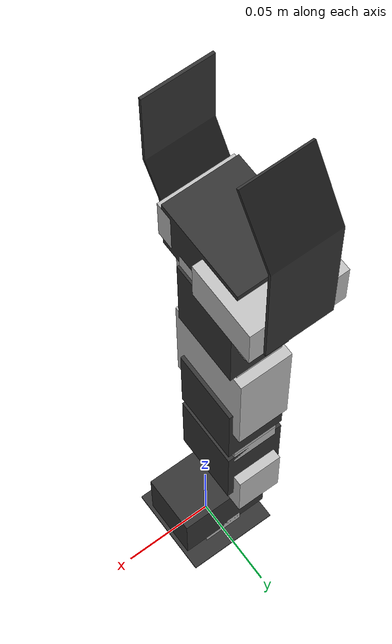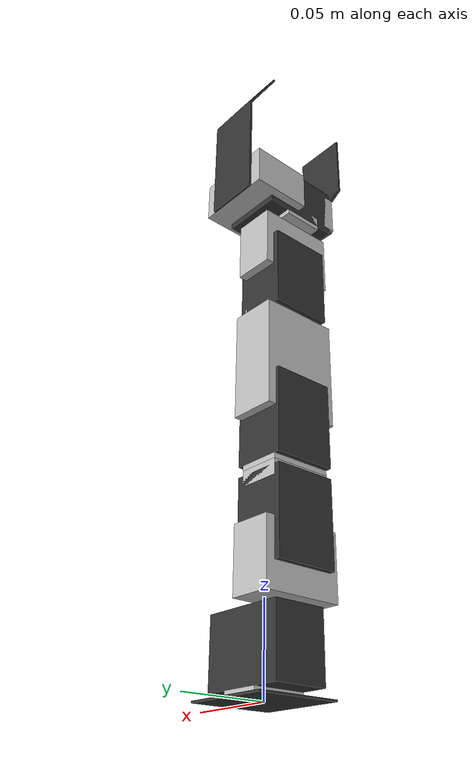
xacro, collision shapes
<?xml version="1.0"?>

<robot
    name="crane_plus"
    xmlns:xacro="http://ros.org/wiki/xacro"
    xmlns:sensor="http://playerstage.sourceforge.net/gazebo/xmlschema/#sensor"
    xmlns:controller="http://playerstage.sourceforge.net/gazebo/xmlschema/#controller"
    xmlns:interface="http://playerstage.sourceforge.net/gazebo/xmlschema/#interface">

  <!-- Include the Crane+ generator macro -->
  <xacro:include filename="$(find crane_plus_description)/urdf/crane_plus.xacro"/>

  <!-- Link to provide the location reference for the arm -->
  <link name="base_link"/>

  <crane_plus parent="base_link"
              servo_color="black" bracket_color="grey" gripper_color="black"
              joints_vlimit="1.571"
              pan_llimit="-2.617" pan_ulimit="2.617">
    <!-- Place the "floating" arm at the origin of the base_link. -->
    <origin xyz="0 0 0"/>
  </crane_plus>

  <!-- Add the transmissions necessary to move the simulated robot's joints -->
  <!-- Shoulder revolute servo -->
  <transmission name="shoulder_revolute">
    <type>transmission_interface/SimpleTransmission</type>
    <joint name="crane_plus_shoulder_revolute_joint">
      <hardwareInterface>hardware_interface/PositionJointInterface</hardwareInterface>
    </joint>
    <actuator name="shoulder_revolute_servo">
      <hardwareInterface>PositionJointInterface</hardwareInterface>
      <mechanicalReduction>1</mechanicalReduction>
    </actuator>
  </transmission>

  <!-- Shoulder flex servo -->
  <transmission name="shoulder_flex">
    <type>transmission_interface/SimpleTransmission</type>
    <joint name="crane_plus_shoulder_flex_joint">
      <hardwareInterface>hardware_interface/PositionJointInterface</hardwareInterface>
    </joint>
    <actuator name="shoulder_flex_servo">
      <hardwareInterface>PositionJointInterface</hardwareInterface>
      <mechanicalReduction>1</mechanicalReduction>
    </actuator>
  </transmission>

  <!-- Elbow servo -->
  <transmission name="elbow">
    <type>transmission_interface/SimpleTransmission</type>
    <joint name="crane_plus_elbow_joint">
      <hardwareInterface>hardware_interface/PositionJointInterface</hardwareInterface>
    </joint>
    <actuator name="elbow_servo">
      <hardwareInterface>PositionJointInterface</hardwareInterface>
      <mechanicalReduction>1</mechanicalReduction>
    </actuator>
  </transmission>

  <!-- Wrist servo -->
  <transmission name="wrist">
    <type>transmission_interface/SimpleTransmission</type>
    <joint name="crane_plus_wrist_joint">
      <hardwareInterface>hardware_interface/PositionJointInterface</hardwareInterface>
    </joint>
    <actuator name="wrist_servo">
      <hardwareInterface>PositionJointInterface</hardwareInterface>
      <mechanicalReduction>1</mechanicalReduction>
    </actuator>
  </transmission>

  <!-- Finger servo -->
  <transmission name="finger">
    <type>transmission_interface/SimpleTransmission</type>
    <joint name="crane_plus_moving_finger_joint">
      <hardwareInterface>hardware_interface/EffortJointInterface</hardwareInterface>
    </joint>
    <actuator name="finger_servo">
      <hardwareInterface>EffortJointInterface</hardwareInterface>
      <mechanicalReduction>1</mechanicalReduction>
    </actuator>
  </transmission>

  <gazebo>
    <plugin name="control" filename="libgazebo_ros_control.so"/>
    <plugin name="joint_state_publisher" filename="libgazebo_ros_joint_state_publisher.so">
      <jointName>
        crane_plus_shoulder_revolute_joint,
        crane_plus_shoulder_flex_joint,
        crane_plus_elbow_joint,
        crane_plus_wrist_joint,
        crane_plus_moving_finger_joint
      </jointName>
    </plugin>
  </gazebo>
</robot>

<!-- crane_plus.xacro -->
<robot xmlns:xacro="http://ros.org/wiki/xacro">
  <xacro:include filename="$(find crane_plus_description)/urdf/crane_plus_hardware.xacro"/>

  <material name="grey">
    <color rgba="0.75 0.75 0.75 1.0"/>
  </material>
  <material name="black">
    <color rgba="0.2 0.2 0.2 1.0"/>
  </material>

  <xacro:macro name="crane_plus" params="parent servo_color bracket_color
               gripper_color *origin joints_vlimit pan_llimit pan_ulimit">
    <link name="crane_plus_mounting_link"/>
    <joint name="crane_plus_mounting_joint" type="fixed">
      <xacro:insert_block name="origin"/>
      <parent link="${parent}"/>
      <child link="crane_plus_mounting_link"/>
    </joint>

    <!-- TODO: When rviz supports multiple materials per link, combine the
         meshes to simplify the link structure. -->

    <!-- Mounting plate -->
    <xacro:mounting_plate
        parent="crane_plus_mounting_link"
        name="crane_plus_internal_mounting_plate"
        color="black">
      <origin xyz="0 0 0" rpy="0 0 0"/>
    </xacro:mounting_plate>

    <!-- Base bracket -->
    <xacro:bioloid_f53_fixed
        parent="crane_plus_internal_mounting_plate_link"
        name="crane_plus_internal_base_bracket"
        color="grey">
      <origin xyz="0 0 ${MOUNT_HEIGHT}" rpy="0 0 0"/>
    </xacro:bioloid_f53_fixed>

    <!-- Shoulder servo -->
    <xacro:dynamixel_ax12_fixed
        parent="crane_plus_internal_base_bracket_link"
        name="crane_plus_internal_shoulder_servo"
        color="black">
        <origin xyz="-${AX12_SIDE_SCREW_OFFSET} 0 ${AX12_BODY_MAIN_HEIGHT/2 + F53_HEIGHT}" rpy="0 0 0"/>
    </xacro:dynamixel_ax12_fixed>

    <!-- Shoulder bracket -->
    <xacro:bioloid_f2_revolute_base_axis
        parent="crane_plus_internal_shoulder_servo_link"
        name="crane_plus_shoulder_revolute"
        color="grey"
        vlimit="${joints_vlimit}"
        llimit="${pan_llimit}"
        ulimit="${pan_ulimit}">
        <origin xyz="-${AX12_AXLE_OFFSET} 0 ${AX12_HORN_HEIGHT}" rpy="0 0 0"/>
    </xacro:bioloid_f2_revolute_base_axis>

    <!--Upper arm servo -->
    <xacro:dynamixel_ax12_revolute
        parent="crane_plus_shoulder_revolute_link"
        name="crane_plus_shoulder_flex"
        color="black"
        vlimit="${joints_vlimit}"
        llimit="-1.7"
        ulimit="1.7">
        <origin xyz="0 0 ${F2_AXLE_HEIGHT}" rpy="-${M_PI/2} -${M_PI/2} 0"/>
    </xacro:dynamixel_ax12_revolute>

    <!-- Upper arm upper joiner -->
    <xacro:bioloid_f3_fixed
        parent="crane_plus_shoulder_flex_link"
        name="crane_plus_internal_upper_arm_upper_joiner"
        color="grey">
        <origin xyz="${AX12_ORIGIN_TO_AXLE+AX12_ORIGIN_TO_END_SCREW+F3_SCREW_HEIGHT} 0 0" rpy="-${M_PI/2} 0 ${M_PI/2}"/>
    </xacro:bioloid_f3_fixed>

    <!-- Upper arm lower joiner -->
    <xacro:bioloid_f3_fixed
        parent="crane_plus_internal_upper_arm_upper_joiner_link"
        name="crane_plus_internal_upper_arm_lower_joiner"
        color="grey">
        <origin xyz="0 0 0" rpy="${M_PI} 0 0"/>
    </xacro:bioloid_f3_fixed>

    <!-- Lower arm servo -->
    <xacro:dynamixel_ax12_fixed
        parent="crane_plus_internal_upper_arm_lower_joiner_link"
        name="crane_plus_internal_lower_arm_servo"
        color="black">
      <origin xyz="0 0 ${F3_SCREW_HEIGHT+AX12_ORIGIN_TO_END_SCREW}" rpy="0 ${M_PI/2} ${M_PI/2}"/>
    </xacro:dynamixel_ax12_fixed>

    <!-- Lower arm bracket -->
    <xacro:bioloid_f4_revolute
        parent="crane_plus_internal_lower_arm_servo_link"
        name="crane_plus_elbow"
        color="grey"
        vlimit="${joints_vlimit}"
        llimit="-2.3"
        ulimit="2.3">
        <origin xyz="-${AX12_ORIGIN_TO_AXLE} 0 0" rpy="${M_PI/2} 0 ${M_PI/2}"/>
    </xacro:bioloid_f4_revolute>

    <!-- Lower arm joiner -->
    <xacro:bioloid_f3_fixed
        parent="crane_plus_elbow_link"
        name="crane_plus_internal_lower_arm_joiner"
        color="grey">
        <origin xyz="0 0 -${F4_AXLE_HEIGHT}" rpy="0 ${M_PI} 0"/>
    </xacro:bioloid_f3_fixed>

    <!-- Wrist servo -->
    <xacro:dynamixel_ax12_fixed
        parent="crane_plus_internal_lower_arm_joiner_link"
        name="crane_plus_internal_wrist_servo"
        color="black">
      <origin xyz="0 0 ${F3_SCREW_HEIGHT+AX12_ORIGIN_TO_END_SCREW}" rpy="0 ${M_PI/2} ${M_PI/2}"/>
    </xacro:dynamixel_ax12_fixed>

    <!-- Wrist bracket -->
    <xacro:bioloid_f2_revolute
        parent="crane_plus_internal_wrist_servo_link"
        name="crane_plus_wrist"
        color="grey"
        vlimit="${joints_vlimit}"
        llimit="-1.7"
        ulimit="1.7">
        <origin xyz="-${AX12_ORIGIN_TO_AXLE} 0 0" rpy="-${M_PI/2} 0 -${M_PI/2}"/>
    </xacro:bioloid_f2_revolute>

    <!-- Wrist joiner -->
    <xacro:bioloid_f3_fixed
        parent="crane_plus_wrist_link"
        name="crane_plus_internal_wrist_joiner"
        color="grey">
        <origin xyz="0 0 -${F2_AXLE_HEIGHT}" rpy="0 ${M_PI} ${M_PI/2}"/>
    </xacro:bioloid_f3_fixed>

    <!-- Gripper servo -->
    <xacro:dynamixel_ax12_fixed
        parent="crane_plus_internal_wrist_joiner_link"
        name="crane_plus_internal_gripper_servo"
        color="black">
        <origin xyz="${AX12_SIDE_SCREW_OFFSET} 0 ${F3_SCREW_HEIGHT+AX12_ORIGIN_TO_SIDE_SCREW}" rpy="${M_PI/2} ${M_PI} 0"/>
    </xacro:dynamixel_ax12_fixed>

    <!-- Fixed finger joiner -->
    <xacro:bioloid_f3_fixed
        parent="crane_plus_internal_gripper_servo_link"
        name="crane_plus_internal_fixed_finger_joiner"
        color="grey">
        <origin xyz="${AX12_ORIGIN_TO_END_SCREW+F3_SCREW_HEIGHT} 0 0" rpy="-${M_PI/2} 0 ${M_PI/2}"/>
    </xacro:bioloid_f3_fixed>

    <!-- Fixed finger -->
    <xacro:fixed_finger
        parent="crane_plus_internal_fixed_finger_joiner_link"
        name="crane_plus_internal_fixed_finger"
        color="black">
      <origin xyz="0 0 0" rpy="0 0 ${M_PI}"/>
    </xacro:fixed_finger>

    <!-- Tip of the fixed finger (useful in all sorts of ways) -->
    <joint name="crane_plus_fixed_finger_tip" type="fixed">
      <origin xyz="0.0745 0 -0.0106" rpy="${M_PI/2} 0 ${M_PI/2}"/>
      <parent link="crane_plus_internal_fixed_finger_link"/>
      <child link="crane_plus_fixed_finger_tip_link"/>
    </joint>
    <link name="crane_plus_fixed_finger_tip_link"/>

    <!-- Moving finger bracket (actual gripper joint) -->
    <xacro:bioloid_f2_revolute
        parent="crane_plus_internal_gripper_servo_link"
        name="crane_plus_moving_finger"
        color="grey"
        vlimit="${joints_vlimit}"
        llimit="-0.6"
        ulimit="0.65">
        <origin xyz="-${AX12_ORIGIN_TO_AXLE} 0 0" rpy="-${M_PI/2} 0 -${M_PI/2}"/>
    </xacro:bioloid_f2_revolute>

    <!-- Moving finger -->
    <xacro:moving_finger
        parent="crane_plus_moving_finger_link"
        name="crane_plus_internal_moving_finger_plate"
        color="black">
      <origin xyz="0 0 -${F2_AXLE_HEIGHT}" rpy="${M_PI} 0 0"/>
    </xacro:moving_finger>

    <!-- Tip of the moving finger (useful in all sorts of ways) -->
    <joint name="crane_plus_moving_finger_tip" type="fixed">
      <origin xyz="0.0923 0 -0.0194" rpy="${M_PI/2} 0 ${M_PI/2}"/>
      <parent link="crane_plus_internal_moving_finger_plate_link"/>
      <child link="crane_plus_moving_finger_tip_link"/>
    </joint>
    <link name="crane_plus_moving_finger_tip_link"/>

    <!-- A virtual link for the gripper to hang off, increasing the degrees of
         freedom by one and making it easier for MoveIt! to plan. -->
    <link name="crane_plus_gripper_link"/>
    <joint name="crane_plus_gripper_joint" type="revolute">
      <origin xyz="0 0 0.07" rpy="0 0 -${M_PI/2}"/>
      <axis xyz="1 0 0"/>
      <parent link="crane_plus_internal_wrist_joiner_link"/>
      <child link="crane_plus_gripper_link" />
      <limit effort="30" velocity="1" lower="-${M_PI}" upper="${M_PI}"/>
    </joint>

  </xacro:macro>
</robot>

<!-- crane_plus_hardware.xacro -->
<robot xmlns:xacro="http://ros.org/wiki/xacro">
  <xacro:property name="M_PI" value="3.14159"/>
  <xacro:property name="SCALE_MM" value="0.001"/>
  <xacro:property name="SCALE_CM" value="0.01"/>

  <xacro:property name="AX12_WIDTH" value="0.032"/>
  <xacro:property name="AX12_ORIGIN_TO_SIDE_SCREW" value="0.0135"/>
  <!-- The AX12 mesh is offset 1.5mm on the X axis away from the direction of
       the axle (i.e. the portion on negative X axis, with the axle, is shorter
       than the portion on the positive X axis).-->
  <xacro:property name="AX12_ORIGIN_OFFSET_X" value="-0.0015"/>
  <!-- The screws along the X axis of the servo are 2.8mm offset from being
       aligned on the origin of the mesh.-->
  <xacro:property name="AX12_SIDE_SCREW_OFFSET" value="0.0028"/>
  <xacro:property name="AX12_LENGTH" value="0.050"/>
  <!-- This is the distance from the origin to the centreline of the screws at
       the opposite end.-->
  <xacro:property name="AX12_ORIGIN_TO_END_SCREW" value="0.024"/>
  <!-- The distance from the centreline of the servo to the centre of the
       axle.-->
  <xacro:property name="AX12_AXLE_OFFSET" value="0.0135"/>
  <!-- The distance from the origin of the servo mesh to the centre of the
       axle.-->
  <xacro:property name="AX12_ORIGIN_TO_AXLE" value="0.012"/>
  <!-- This height is measured from the bottom axle mount to the top of the
       servo horn (the round bit on the axle).-->
  <xacro:property name="AX12_HEIGHT" value="0.040"/>
  <!-- This height is measured from the bottom of the servo body to the top of
       the servo body.-->
  <xacro:property name="AX12_BODY_MAIN_HEIGHT" value="0.032"/>
  <!-- This height is measured from the bottom axle mount to the top of the
       servo, excluding the horn.-->
  <xacro:property name="AX12_BODY_FULL_HEIGHT" value="0.038"/>
  <!-- This is the height of the top of the servo horn above the servo's
       origin.-->
  <xacro:property name="AX12_HORN_HEIGHT" value="0.021"/>

  <xacro:property name="F2_HEIGHT" value="0.0375"/>
  <!-- This height goes from the bottom attachment point to the centreline of
       the axle attach point.-->
  <xacro:property name="F2_AXLE_HEIGHT" value="0.0265"/>
  <xacro:property name="F3_SCREW_HEIGHT" value="0.0055"/>
  <xacro:property name="F4_HEIGHT" value="0.065"/>
  <!-- This height goes from the bottom attachment point (excluding the
       parallel nubs) to the centreline of the axel attach point.-->
  <xacro:property name="F4_AXLE_HEIGHT" value="0.0525"/>
  <!-- This height goes to where the servo contacts the screw points. It does
       not include the nubs on top that fit between the servo screw attachment
       points.-->
  <xacro:property name="F53_HEIGHT" value="0.007"/>

  <xacro:property name="MOUNT_HEIGHT" value="0.001"/>

  <xacro:macro name="mounting_plate" params="parent name color *origin">
    <joint name="${name}_joint" type="fixed">
      <xacro:insert_block name="origin"/>
      <parent link="${parent}"/>
      <child link="${name}_link"/>
    </joint>

    <link name="${name}_link">
          <!--iyy="8.33e-6" iyz="0.0"-->
      <inertial>
        <mass value="0.001"/>
        <origin xyz="0 0 0.0005" rpy="0 0 0"/>
        <inertia ixx="1" ixy="0.0" ixz="0.0"
          iyy="1" iyz="0.0"
          izz="1"/>
      </inertial>

      <visual>
        <origin xyz="-0.025 -0.025 0" rpy="0 0 0"/>
        <geometry>
          <mesh filename="package://crane_plus_description/meshes/mount.stl" scale="1 1 1"/>
        </geometry>
        <material name="${color}"/>
      </visual>

      <collision>
        <origin xyz="0 0 0.0005" rpy="0 0 0"/>
        <geometry>
          <box size="0.05 0.05 0.001"/>
        </geometry>
      </collision>
    </link>
  </xacro:macro>

  <xacro:macro name="bioloid_f53_fixed" params="parent name color *origin">
    <joint name="${name}_joint" type="fixed">
      <xacro:insert_block name="origin"/>
      <parent link="${parent}"/>
      <child link="${name}_link"/>
    </joint>

    <link name="${name}_link">
      <inertial>
        <mass value="0.001"/>
        <origin xyz="0 0 0.0005" rpy="0 0 0"/>
        <inertia ixx="1" ixy="0.0" ixz="0.0"
          iyy="1" iyz="0.0"
          izz="1"/>
      </inertial>
          <!--iyy="6.283e-7" iyz="0.0"-->

      <visual>
        <origin xyz="0 0 0" rpy="-${M_PI/2} 0 0"/>
        <geometry>
          <mesh filename="package://crane_plus_description/meshes/f53.stl" scale="${SCALE_CM} ${SCALE_CM} ${SCALE_CM}"/>
        </geometry>
        <material name="${color}"/>
      </visual>

      <collision>
        <origin xyz="0.0 0.0 0.004" rpy="0 0 0"/>
        <geometry>
          <box size="0.022 0.032 0.008"/>
        </geometry>
      </collision>
    </link>
  </xacro:macro>

  <xacro:macro name="dynamixel_ax12_fixed" params="parent name color *origin">
    <joint name="${name}_joint" type="fixed">
      <xacro:insert_block name="origin"/>
      <parent link="${parent}"/>
      <child link="${name}_link"/>
    </joint>

    <link name="${name}_link">
      <inertial>
        <mass value="0.001"/>
        <origin xyz="0 0 0.0005" rpy="0 0 0"/>
        <inertia ixx="1" ixy="0.0" ixz="0.0"
          iyy="1" iyz="0.0"
          izz="1"/>
      </inertial>
          <!--iyy="1.656e-50" iyz="0.0"-->

      <visual>
        <origin xyz="0 0 0" rpy="-${M_PI/2} 0 0"/>
        <geometry>
          <mesh filename="package://crane_plus_description/meshes/ax12_box.stl" scale="${SCALE_MM} ${SCALE_MM} ${SCALE_MM}"/>
        </geometry>
        <material name="${color}"/>
      </visual>

      <collision>
        <origin xyz="${0-AX12_ORIGIN_OFFSET_X} 0 0" rpy="0 0 0"/>
        <geometry>
          <box size="${AX12_LENGTH} ${AX12_WIDTH} ${AX12_BODY_FULL_HEIGHT}"/>
        </geometry>
      </collision>
    </link>
  </xacro:macro>

  <xacro:macro name="dynamixel_ax12_revolute" params="parent name color llimit ulimit vlimit *origin">
    <joint name="${name}_joint" type="revolute">
      <xacro:insert_block name="origin"/>
      <axis xyz="0 0 -1"/>
      <limit effort="30" velocity="${vlimit}" lower="${llimit}" upper="${ulimit}"/>
      <parent link="${parent}"/>
      <child link="${name}_link"/>
    </joint>

    <link name="${name}_link">
      <inertial>
        <mass value="0.001"/>
        <origin xyz="0 0 0.0005" rpy="0 0 0"/>
        <inertia ixx="1" ixy="0.0" ixz="0.0"
          iyy="1" iyz="0.0"
          izz="1"/>
      </inertial>
          <!--iyy="1.656e-5" iyz="0.0"-->

      <visual>
        <origin xyz="${AX12_ORIGIN_TO_AXLE} 0 0" rpy="-${M_PI/2} 0 0"/>
        <geometry>
          <mesh filename="package://crane_plus_description/meshes/ax12_box.stl" scale="${SCALE_MM} ${SCALE_MM} ${SCALE_MM}"/>
        </geometry>
        <material name="${color}"/>
      </visual>

      <collision>
        <origin xyz="${AX12_ORIGIN_TO_AXLE-AX12_ORIGIN_OFFSET_X} 0 0" rpy="0 0 0"/>
        <geometry>
          <box size="${AX12_LENGTH} ${AX12_WIDTH} ${AX12_BODY_FULL_HEIGHT}"/>
        </geometry>
      </collision>
    </link>
  </xacro:macro>

  <xacro:macro name="bioloid_f2_revolute_base_axis" params="parent name color llimit ulimit vlimit *origin">
    <joint name="${name}_joint" type="revolute">
      <xacro:insert_block name="origin"/>
      <axis xyz="0 0 1"/>
      <limit effort="30" velocity="${vlimit}" lower="${llimit}" upper="${ulimit}"/>
      <parent link="${parent}"/>
      <child link="${name}_link"/>
    </joint>

    <link name="${name}_link">
      <inertial>
        <mass value="0.001"/>
        <origin xyz="0 0 0.0005" rpy="0 0 0"/>
        <inertia ixx="1" ixy="0.0" ixz="0.0"
          iyy="1" iyz="0.0"
          izz="1"/>
      </inertial>
        <!--[> Full height: (3.1320833333333333e-06, 2.481041666666667e-06, 1.6927083333333333e-06) <]-->
        <!--[> Half height: (2.253177083333333e-06, 2.481041666666667e-06, 8.138020833333333e-07) <]-->
          <!--iyy="2.481e-6" iyz="0.0"-->

      <visual>
        <origin xyz="0 0 ${F2_AXLE_HEIGHT}" rpy="${M_PI/2} 0 0"/>
        <geometry>
          <mesh filename="package://crane_plus_description/meshes/f2.stl" scale="${SCALE_MM} ${SCALE_MM} ${SCALE_MM}"/>
        </geometry>
        <material name="${color}"/>
      </visual>

      <collision>
        <origin xyz="0 0 0.01875" rpy="0 0 0"/>
        <geometry>
          <box size="0.025 0.0485 0.0375"/>
        </geometry>
      </collision>
    </link>
  </xacro:macro>

  <xacro:macro name="bioloid_f2_revolute" params="parent name color llimit ulimit vlimit *origin">
    <joint name="${name}_joint" type="revolute">
      <xacro:insert_block name="origin"/>
      <axis xyz="0 -1 0"/>
      <limit effort="30" velocity="${vlimit}" lower="${llimit}" upper="${ulimit}"/>
      <parent link="${parent}"/>
      <child link="${name}_link"/>
    </joint>

    <link name="${name}_link">
      <inertial>
        <mass value="0.001"/>
        <origin xyz="0 0 0.0005" rpy="0 0 0"/>
        <inertia ixx="1" ixy="0.0" ixz="0.0"
          iyy="1" iyz="0.0"
          izz="1"/>
      </inertial>
        <!--[> Full height: (3.1320833333333333e-06, 2.481041666666667e-06, 1.6927083333333333e-06) <]-->
        <!--[> Half height: (2.253177083333333e-06, 2.481041666666667e-06, 8.138020833333333e-07) <]-->
          <!--iyy="2.481e-6" iyz="0.0"-->

      <visual>
        <origin xyz="0 0 0" rpy="${M_PI/2} 0 0"/>
        <geometry>
          <mesh filename="package://crane_plus_description/meshes/f2.stl" scale="${SCALE_MM} ${SCALE_MM} ${SCALE_MM}"/>
        </geometry>
        <material name="${color}"/>
      </visual>

      <collision>
        <origin xyz="0 0 -${F2_AXLE_HEIGHT-F2_HEIGHT/2}" rpy="0 0 0"/>
        <geometry>
          <box size="0.025 0.0485 0.0375"/>
        </geometry>
      </collision>
    </link>
  </xacro:macro>

  <xacro:macro name="bioloid_f3_fixed" params="parent name color *origin">
    <joint name="${name}_joint" type="fixed">
      <xacro:insert_block name="origin"/>
      <parent link="${parent}"/>
      <child link="${name}_link"/>
    </joint>

    <link name="${name}_link">
      <inertial>
        <mass value="0.001"/>
        <origin xyz="0 0 0.0005" rpy="0 0 0"/>
        <inertia ixx="1" ixy="0.0" ixz="0.0"
          iyy="1" iyz="0.0"
          izz="1"/>
      </inertial>
          <!--iyy="8.621e-7" iyz="0.0"-->

      <visual>
        <origin xyz="0 0 0" rpy="${M_PI/2} 0 ${M_PI}"/>
        <geometry>
          <mesh filename="package://crane_plus_description/meshes/f3.stl" scale="${SCALE_MM} ${SCALE_MM} ${SCALE_MM}"/>
        </geometry>
        <material name="${color}"/>
      </visual>

      <collision>
        <origin xyz="0.0 0.0 0.0045" rpy="0 0 0"/>
        <geometry>
          <box size="0.025 0.038 0.009"/>
        </geometry>
      </collision>
    </link>
  </xacro:macro>

  <xacro:macro name="bioloid_f4_revolute" params="parent name color llimit ulimit vlimit *origin">
    <joint name="${name}_joint" type="revolute">
      <xacro:insert_block name="origin"/>
      <axis xyz="0 1 0"/>
      <limit effort="30" velocity="${vlimit}" lower="${llimit}" upper="${ulimit}"/>
      <parent link="${parent}"/>
      <child link="${name}_link"/>
    </joint>

    <link name="${name}_link">
      <inertial>
        <mass value="0.001"/>
        <origin xyz="0 0 0.0005" rpy="0 0 0"/>
        <inertia ixx="1" ixy="0.0" ixz="0.0"
          iyy="1" iyz="0.0"
          izz="1"/>
      </inertial>
        <!--[> Full height: (8.2215625e-06, 3.9203124999999996e-06, 6.2612499999999996e-06) <]-->
        <!--[> Half height: (4.2606249999999995e-06, 3.9203124999999996e-06, 2.3003125e-06) <]-->
          <!--iyy="3.921e-6" iyz="0.0"-->

      <visual>
        <origin xyz="0 0 0" rpy="${M_PI/2} 0 0"/>
        <geometry>
          <mesh filename="package://crane_plus_description/meshes/f4.stl" scale="${SCALE_MM} ${SCALE_MM} ${SCALE_MM}"/>
        </geometry>
        <material name="${color}"/>
      </visual>

      <collision>
        <!-- 0.0015 is for the nub height which is not included in
             F4_AXLE_HEIGHT -->
        <origin xyz="0 0 -${F4_AXLE_HEIGHT-F4_HEIGHT/2+0.0015}" rpy="0 0 0"/>
        <geometry>
          <box size="0.028 0.0485 0.065"/>
        </geometry>
      </collision>
    </link>
  </xacro:macro>

  <xacro:macro name="fixed_finger" params="parent name color *origin">
    <joint name="${name}_joint" type="fixed">
      <xacro:insert_block name="origin"/>
      <parent link="${parent}"/>
      <child link="${name}_link"/>
    </joint>

    <link name="${name}_link">
      <inertial>
        <mass value="0.001"/>
        <origin xyz="0 0 0.0005" rpy="0 0 0"/>
        <inertia ixx="1" ixy="0.0" ixz="0.0"
          iyy="1" iyz="0.0"
          izz="1"/>
      </inertial>
          <!--iyy="1.823e-5" iyz="0.0"-->

      <visual>
        <origin xyz="0 0 0" rpy="0 0 0"/>
        <geometry>
          <mesh filename="package://crane_plus_description/meshes/finger_fixed.stl" scale="${SCALE_MM} ${SCALE_MM} ${SCALE_MM}"/>
        </geometry>
        <material name="${color}"/>
      </visual>

      <collision>
        <origin xyz="0 0 0" rpy="0 0 0"/>
        <geometry>
          <mesh filename="package://crane_plus_description/meshes/finger_fixed_collision.stl" scale="${SCALE_MM} ${SCALE_MM} ${SCALE_MM}"/>
        </geometry>
      </collision>
    </link>
  </xacro:macro>

  <xacro:macro name="moving_finger" params="parent name color *origin">
    <joint name="${name}_joint" type="fixed">
      <xacro:insert_block name="origin"/>
      <parent link="${parent}"/>
      <child link="${name}_link"/>
    </joint>

    <link name="${name}_link">
      <inertial>
        <mass value="0.001"/>
        <origin xyz="0 0 0.0005" rpy="0 0 0"/>
        <inertia ixx="1" ixy="0.0" ixz="0.0"
          iyy="1" iyz="0.0"
          izz="1"/>
      </inertial>
          <!--iyy="2.2e-5" iyz="0.0"-->

      <visual>
        <origin xyz="0 0 0" rpy="0 0 0"/>
        <geometry>
          <mesh filename="package://crane_plus_description/meshes/finger_moving.stl" scale="${SCALE_MM} ${SCALE_MM} ${SCALE_MM}"/>
        </geometry>
        <material name="${color}"/>
      </visual>

      <collision>
        <origin xyz="0 0 0" rpy="0 0 0"/>
        <geometry>
          <mesh filename="package://crane_plus_description/meshes/finger_moving_collision.stl" scale="${SCALE_MM} ${SCALE_MM} ${SCALE_MM}"/>
        </geometry>
      </collision>
    </link>
  </xacro:macro>

</robot>
